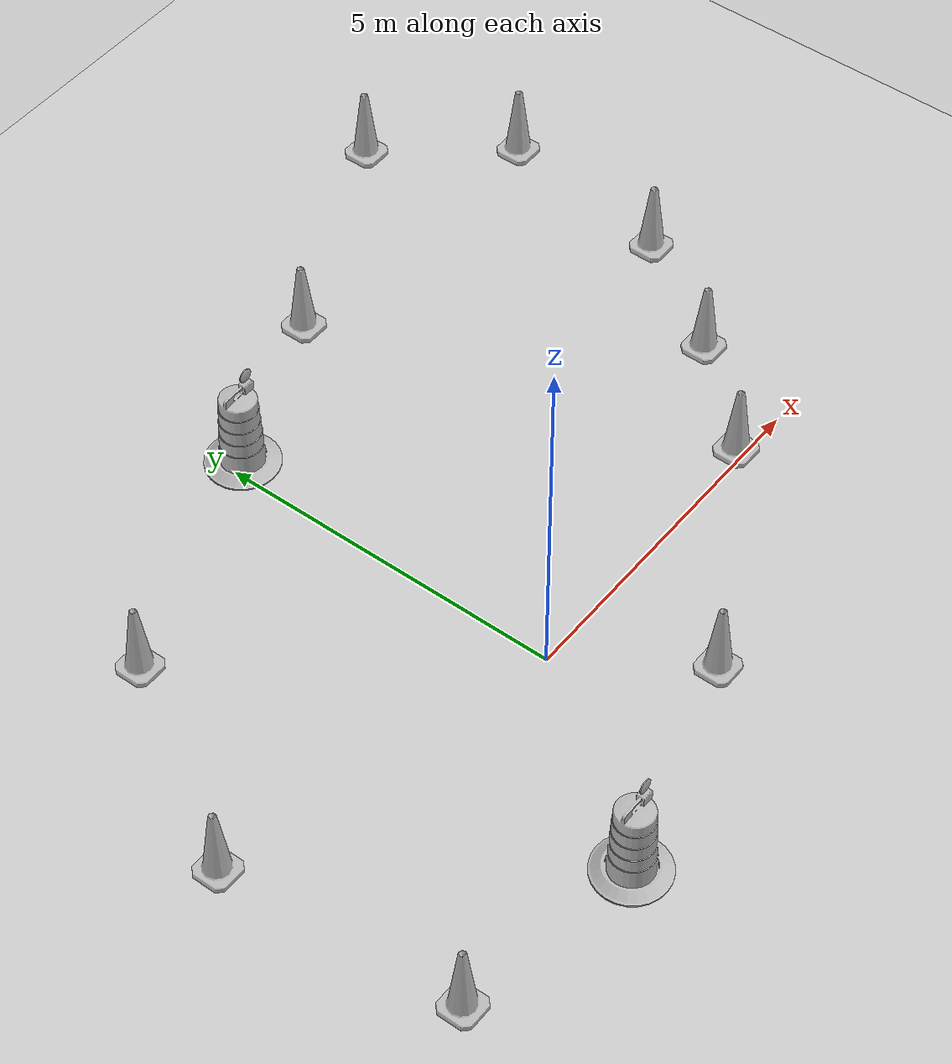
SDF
<sdf version="1.7">
 <world name="amr_rough_floor">
  <light name="sun" type="directional">
   <pose>0 0 10 0 -0 0</pose>
   <diffuse>0.8 0.8 0.8 1</diffuse>
   <specular>0.2 0.2 0.2 1</specular>
   <attenuation>
    <range>1000</range>
    <constant>0.9</constant>
    <linear>0.01</linear>
    <quadratic>0.001</quadratic>
   </attenuation>
   <direction>-0.5 0.1 -0.9</direction>
   <spot><inner_angle>0</inner_angle><outer_angle>0</outer_angle><falloff>0</falloff></spot>
  </light>
  <model name="ground_plane">
   <static>1</static>
   <link name="link">
    <collision name="collision">
     <geometry><plane><normal>0 0 1</normal><size>100 100</size></plane></geometry>
     <surface>
      <contact><collide_bitmask>65535</collide_bitmask></contact>
      <friction><ode><mu>100</mu><mu2>50</mu2></ode></friction>
     </surface>
    </collision>
    <visual name="visual">
     <cast_shadows>0</cast_shadows>
     <geometry><plane><normal>0 0 1</normal><size>100 100</size></plane></geometry>
     <material>
      <script><uri>file://media/materials/scripts/gazebo.material</uri><name>Gazebo/Grey</name></script>
     </material>
    </visual>
   </link>
  </model>
  <physics type="ode">
   <max_step_size>0.001</max_step_size>
   <real_time_update_rate>1000</real_time_update_rate>
   <real_time_factor>1</real_time_factor>
  </physics>
  <model name="ground_plane">
   <static>1</static>
   <link name="link">
    <collision name="collision">
     <geometry><plane><normal>0 0 1</normal><size>100 100</size></plane></geometry>
     <surface>
      <contact><collide_bitmask>65535</collide_bitmask></contact>
      <friction><ode><mu>100</mu><mu2>50</mu2></ode></friction>
     </surface>
    </collision>
    <visual name="visual">
     <cast_shadows>0</cast_shadows>
     <geometry><plane><normal>0 0 1</normal><size>100 100</size></plane></geometry>
     <material>
      <script><uri>file://media/materials/scripts/gazebo.material</uri><name>Gazebo/Grey</name></script>
     </material>
    </visual>
   </link>
  </model>
  <gravity>0 0 -9.8</gravity>
  <magnetic_field>6e-06 2.3e-05 -4.2e-05</magnetic_field>
  <atmosphere type="adiabatic"/>
  <scene><ambient>0.4 0.4 0.4 1</ambient><background>0.7 0.7 0.7 1</background><shadows>1</shadows></scene>
  <spherical_coordinates>
   <surface_model>EARTH_WGS84</surface_model>
   <latitude_deg>0</latitude_deg>
   <longitude_deg>0</longitude_deg>
   <elevation>0</elevation>
   <heading_deg>0</heading_deg>
  </spherical_coordinates>
  <model name="Construction Cone">
   <link name="link">
    <collision name="collision">
     <geometry>
      <mesh><scale>10 10 10</scale><uri>model://construction_cone/meshes/construction_cone.dae</uri></mesh>
     </geometry>
    </collision>
    <visual name="visual">
     <geometry>
      <mesh><scale>10 10 10</scale><uri>model://construction_cone/meshes/construction_cone.dae</uri></mesh>
     </geometry>
    </visual>
    <inertial>
     <inertia><ixx>1</ixx><ixy>0</ixy><ixz>0</ixz><iyy>1</iyy><iyz>0</iyz><izz>1</izz></inertia>
     <mass>1</mass>
    </inertial>
   </link>
   <pose>1.16556 -1.71936 -1e-05 -1e-06 0 0</pose>
  </model>
  <model name="Construction Cone_0">
   <link name="link">
    <collision name="collision">
     <geometry>
      <mesh><scale>10 10 10</scale><uri>model://construction_cone/meshes/construction_cone.dae</uri></mesh>
     </geometry>
    </collision>
    <visual name="visual">
     <geometry>
      <mesh><scale>10 10 10</scale><uri>model://construction_cone/meshes/construction_cone.dae</uri></mesh>
     </geometry>
    </visual>
    <inertial>
     <inertia><ixx>1</ixx><ixy>0</ixy><ixz>0</ixz><iyy>1</iyy><iyz>0</iyz><izz>1</izz></inertia>
     <mass>1</mass>
    </inertial>
   </link>
   <pose>4.23457 0.119615 -9e-06 -1e-06 -0 -0</pose>
  </model>
  <model name="Construction Barrel">
   <link name="link">
    <inertial>
     <pose>0 0 0.4 0 -0 0</pose>
     <mass>500</mass>
     <inertia><ixx>51.2096</ixx><iyy>51.2096</iyy><izz>25</izz><ixy>0</ixy><ixz>0</ixz><iyz>0</iyz></inertia>
    </inertial>
    <collision name="collision">
     <geometry><mesh><uri>model://construction_barrel/meshes/construction_barrel.dae</uri></mesh></geometry>
    </collision>
    <visual name="visual">
     <geometry><mesh><uri>model://construction_barrel/meshes/construction_barrel.dae</uri></mesh></geometry>
    </visual>
   </link>
   <pose>0.213491 5.04877 -0 0 0 -1.8e-05</pose>
  </model>
  <model name="Construction Cone_1">
   <link name="link">
    <collision name="collision">
     <geometry>
      <mesh><scale>10 10 10</scale><uri>model://construction_cone/meshes/construction_cone.dae</uri></mesh>
     </geometry>
    </collision>
    <visual name="visual">
     <geometry>
      <mesh><scale>10 10 10</scale><uri>model://construction_cone/meshes/construction_cone.dae</uri></mesh>
     </geometry>
    </visual>
    <inertial>
     <inertia><ixx>1</ixx><ixy>0</ixy><ixz>0</ixz><iyy>1</iyy><iyz>0</iyz><izz>1</izz></inertia>
     <mass>1</mass>
    </inertial>
   </link>
   <pose>-4.49794 -2.19385 -8e-06 0 1e-06 0</pose>
  </model>
  <model name="Construction Barrel_0">
   <link name="link">
    <inertial>
     <pose>0 0 0.4 0 -0 0</pose>
     <mass>500</mass>
     <inertia><ixx>51.2096</ixx><iyy>51.2096</iyy><izz>25</izz><ixy>0</ixy><ixz>0</ixz><iyz>0</iyz></inertia>
    </inertial>
    <collision name="collision">
     <geometry><mesh><uri>model://construction_barrel/meshes/construction_barrel.dae</uri></mesh></geometry>
    </collision>
    <visual name="visual">
     <geometry><mesh><uri>model://construction_barrel/meshes/construction_barrel.dae</uri></mesh></geometry>
    </visual>
   </link>
   <pose>-1.86635 -2.6064 -1e-06 3e-06 7e-06 -1.5e-05</pose>
  </model>
  <model name="Construction Cone_2">
   <link name="link">
    <collision name="collision">
     <geometry>
      <mesh><scale>10 10 10</scale><uri>model://construction_cone/meshes/construction_cone.dae</uri></mesh>
     </geometry>
    </collision>
    <visual name="visual">
     <geometry>
      <mesh><scale>10 10 10</scale><uri>model://construction_cone/meshes/construction_cone.dae</uri></mesh>
     </geometry>
    </visual>
    <inertial>
     <inertia><ixx>1</ixx><ixy>0</ixy><ixz>0</ixz><iyy>1</iyy><iyz>0</iyz><izz>1</izz></inertia>
     <mass>1</mass>
    </inertial>
   </link>
   <pose>-4.78004 1.15161 -0 0 -0 0</pose>
  </model>
  <model name="Construction Cone_3">
   <link name="link">
    <collision name="collision">
     <geometry>
      <mesh><scale>10 10 10</scale><uri>model://construction_cone/meshes/construction_cone.dae</uri></mesh>
     </geometry>
    </collision>
    <visual name="visual">
     <geometry>
      <mesh><scale>10 10 10</scale><uri>model://construction_cone/meshes/construction_cone.dae</uri></mesh>
     </geometry>
    </visual>
    <inertial>
     <inertia><ixx>1</ixx><ixy>0</ixy><ixz>0</ixz><iyy>1</iyy><iyz>0</iyz><izz>1</izz></inertia>
     <mass>1</mass>
    </inertial>
   </link>
   <pose>-3.11507 3.84046 -5e-06 -4e-06 1e-06 0</pose>
  </model>
  <model name="Construction Cone_4">
   <link name="link">
    <collision name="collision">
     <geometry>
      <mesh><scale>10 10 10</scale><uri>model://construction_cone/meshes/construction_cone.dae</uri></mesh>
     </geometry>
    </collision>
    <visual name="visual">
     <geometry>
      <mesh><scale>10 10 10</scale><uri>model://construction_cone/meshes/construction_cone.dae</uri></mesh>
     </geometry>
    </visual>
    <inertial>
     <inertia><ixx>1</ixx><ixy>0</ixy><ixz>0</ixz><iyy>1</iyy><iyz>0</iyz><izz>1</izz></inertia>
     <mass>1</mass>
    </inertial>
   </link>
   <pose>2.54716 5.97186 -1e-05 -0 -0 -0</pose>
  </model>
  <model name="Construction Cone_5">
   <link name="link">
    <collision name="collision">
     <geometry>
      <mesh><scale>10 10 10</scale><uri>model://construction_cone/meshes/construction_cone.dae</uri></mesh>
     </geometry>
    </collision>
    <visual name="visual">
     <geometry>
      <mesh><scale>10 10 10</scale><uri>model://construction_cone/meshes/construction_cone.dae</uri></mesh>
     </geometry>
    </visual>
    <inertial>
     <inertia><ixx>1</ixx><ixy>0</ixy><ixz>0</ixz><iyy>1</iyy><iyz>0</iyz><izz>1</izz></inertia>
     <mass>1</mass>
    </inertial>
   </link>
   <pose>5.721 7.46514 -0 0 -0 0</pose>
  </model>
  <model name="Construction Cone_6">
   <link name="link">
    <collision name="collision">
     <geometry>
      <mesh><scale>10 10 10</scale><uri>model://construction_cone/meshes/construction_cone.dae</uri></mesh>
     </geometry>
    </collision>
    <visual name="visual">
     <geometry>
      <mesh><scale>10 10 10</scale><uri>model://construction_cone/meshes/construction_cone.dae</uri></mesh>
     </geometry>
    </visual>
    <inertial>
     <inertia><ixx>1</ixx><ixy>0</ixy><ixz>0</ixz><iyy>1</iyy><iyz>0</iyz><izz>1</izz></inertia>
     <mass>1</mass>
    </inertial>
   </link>
   <pose>7.07331 5.79622 -1e-05 -1e-06 0 0</pose>
  </model>
  <model name="Construction Cone_7">
   <link name="link">
    <collision name="collision">
     <geometry>
      <mesh><scale>10 10 10</scale><uri>model://construction_cone/meshes/construction_cone.dae</uri></mesh>
     </geometry>
    </collision>
    <visual name="visual">
     <geometry>
      <mesh><scale>10 10 10</scale><uri>model://construction_cone/meshes/construction_cone.dae</uri></mesh>
     </geometry>
    </visual>
    <inertial>
     <inertia><ixx>1</ixx><ixy>0</ixy><ixz>0</ixz><iyy>1</iyy><iyz>0</iyz><izz>1</izz></inertia>
     <mass>1</mass>
    </inertial>
   </link>
   <pose>6.6355 3.17466 -0 0 -0 0</pose>
  </model>
  <model name="Construction Cone_8">
   <link name="link">
    <collision name="collision">
     <geometry>
      <mesh><scale>10 10 10</scale><uri>model://construction_cone/meshes/construction_cone.dae</uri></mesh>
     </geometry>
    </collision>
    <visual name="visual">
     <geometry>
      <mesh><scale>10 10 10</scale><uri>model://construction_cone/meshes/construction_cone.dae</uri></mesh>
     </geometry>
    </visual>
    <inertial>
     <inertia><ixx>1</ixx><ixy>0</ixy><ixz>0</ixz><iyy>1</iyy><iyz>0</iyz><izz>1</izz></inertia>
     <mass>1</mass>
    </inertial>
   </link>
   <pose>5.49516 1.50341 -0 0 -1e-06 0</pose>
  </model>
 </world>
</sdf>
